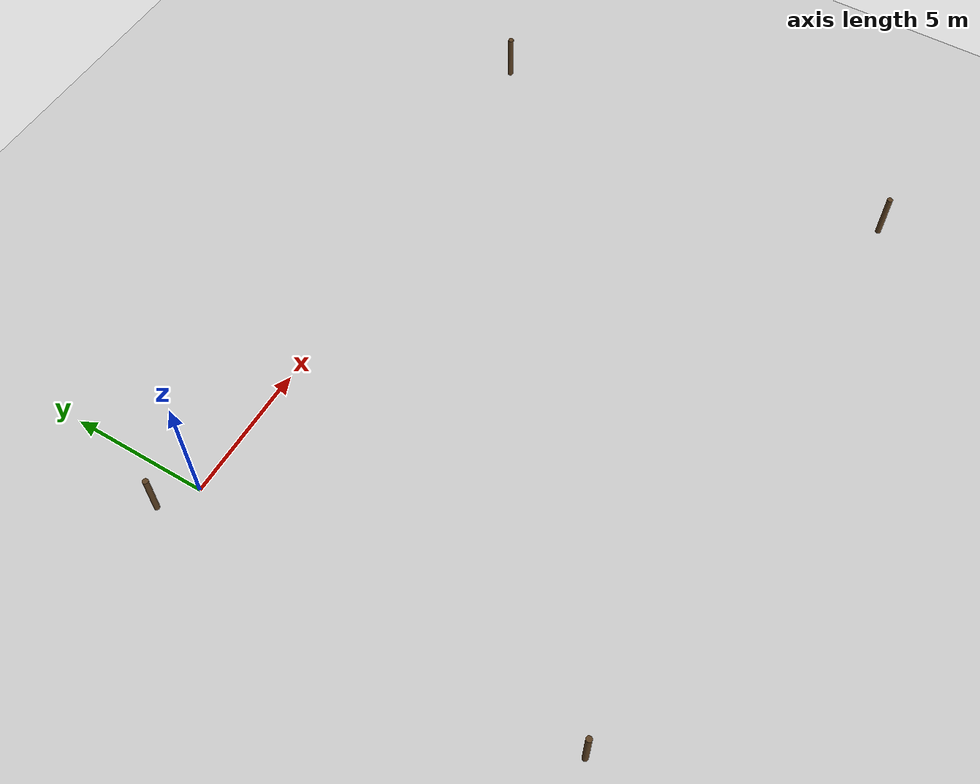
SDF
<sdf version="1.6">
 <world name="agricultural_field">
  <include><uri>model://sun</uri></include>
  <include><uri>model://ground_plane</uri></include>
  <physics type="ode">
   <max_step_size>0.001</max_step_size>
   <real_time_update_rate>1000</real_time_update_rate>
  </physics>
  <scene>
   <ambient>0.55 0.55 0.5 1</ambient>
   <background>0.55 0.7 0.9 1</background>
   <shadows>true</shadows>
  </scene>
  <model name="boundary_posts">
   <static>true</static>
   <link name="posts">
    <visual name="post_0">
     <pose>-1.2 0.8 0.9 0 0 0</pose>
     <geometry><cylinder><radius>0.10</radius><length>1.8</length></cylinder></geometry>
     <material><ambient>0.28 0.19 0.10 1</ambient><diffuse>0.36 0.25 0.13 1</diffuse></material>
    </visual>
    <visual name="post_1">
     <pose>21.2 0.8 0.9 0 0 0</pose>
     <geometry><cylinder><radius>0.10</radius><length>1.8</length></cylinder></geometry>
     <material><ambient>0.28 0.19 0.10 1</ambient><diffuse>0.36 0.25 0.13 1</diffuse></material>
    </visual>
    <visual name="post_2">
     <pose>-1.2 -14.8 0.9 0 0 0</pose>
     <geometry><cylinder><radius>0.10</radius><length>1.8</length></cylinder></geometry>
     <material><ambient>0.28 0.19 0.10 1</ambient><diffuse>0.36 0.25 0.13 1</diffuse></material>
    </visual>
    <visual name="post_3">
     <pose>21.2 -14.8 0.9 0 0 0</pose>
     <geometry><cylinder><radius>0.10</radius><length>1.8</length></cylinder></geometry>
     <material><ambient>0.28 0.19 0.10 1</ambient><diffuse>0.36 0.25 0.13 1</diffuse></material>
    </visual>
   </link>
  </model>
 </world>
</sdf>
